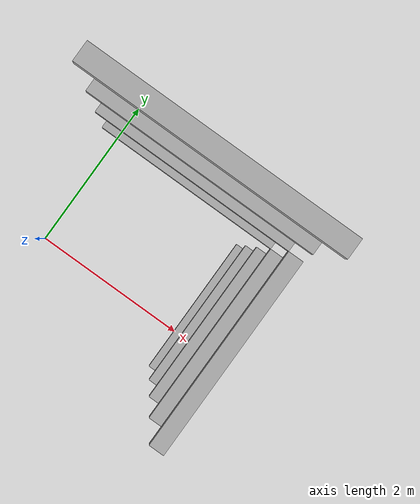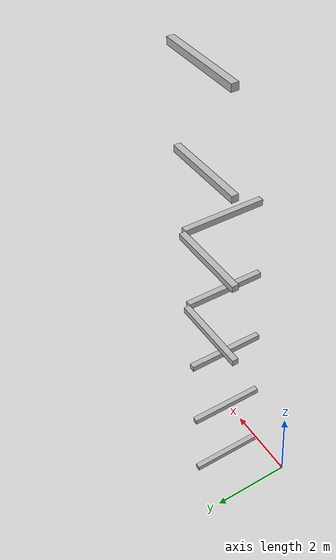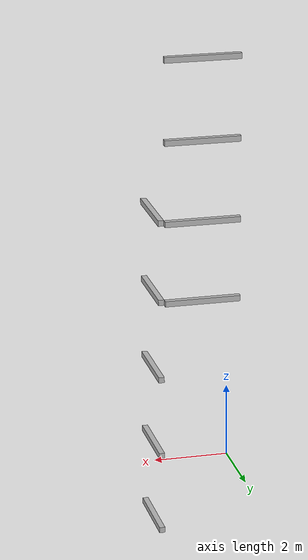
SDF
<sdf version="1.7">
 <world name="default">
  <model name="orthogonal_747_2.000.15_TS">
   <static>1</static>
   <link name="y_link_0_2_4">
    <inertial>
     <mass>1</mass>
     <inertia>
      <ixx>0.166667</ixx>
      <ixy>0</ixy>
      <ixz>0</ixz>
      <iyy>0.166667</iyy>
      <iyz>0</iyz>
      <izz>0.166667</izz>
     </inertia>
    </inertial>
    <pose>8.6 5.375 1.075 0 -0 0</pose>
    <visual name="visual_0">
     <laser_retro>414</laser_retro>
     <geometry><box><size>0.15 1e-06 0.15</size></box></geometry>
     <material>
      <script><name>Gazebo/Grey</name><uri>file://media/materials/scripts/gazebo.material</uri></script>
      <shader type="pixel"><normal_map>__default__</normal_map></shader>
      <ambient>0.678 0.498 0.659 1</ambient>
      <diffuse>0.7 0.7 0.7 1</diffuse>
      <specular>0.01 0.01 0.01 1</specular>
      <emissive>0 0 0 1</emissive>
     </material>
     <pose>0 -1 0 0 -0 0</pose>
     <transparency>1</transparency>
    </visual>
    <visual name="visual_1">
     <laser_retro>415</laser_retro>
     <geometry><box><size>0.15 1e-06 0.15</size></box></geometry>
     <material>
      <script><name>Gazebo/Grey</name><uri>file://media/materials/scripts/gazebo.material</uri></script>
      <shader type="pixel"><normal_map>__default__</normal_map></shader>
      <ambient>0.447 0.624 0.812 1</ambient>
      <diffuse>0.7 0.7 0.7 1</diffuse>
      <specular>0.01 0.01 0.01 1</specular>
      <emissive>0 0 0 1</emissive>
     </material>
     <pose>0 1 0 0 -0 0</pose>
     <transparency>1</transparency>
    </visual>
    <visual name="visual_2">
     <laser_retro>416</laser_retro>
     <geometry><box><size>0.15 2 1e-06</size></box></geometry>
     <material>
      <script><name>Gazebo/Grey</name><uri>file://media/materials/scripts/gazebo.material</uri></script>
      <shader type="pixel"><normal_map>__default__</normal_map></shader>
      <ambient>0.988 0.686 0.243 1</ambient>
      <diffuse>0.7 0.7 0.7 1</diffuse>
      <specular>0.01 0.01 0.01 1</specular>
      <emissive>0 0 0 1</emissive>
     </material>
     <pose>0 0 -0.075 0 -0 0</pose>
     <transparency>1</transparency>
    </visual>
    <visual name="visual_3">
     <laser_retro>417</laser_retro>
     <geometry><box><size>1e-06 2 0.15</size></box></geometry>
     <material>
      <script><name>Gazebo/Grey</name><uri>file://media/materials/scripts/gazebo.material</uri></script>
      <shader type="pixel"><normal_map>__default__</normal_map></shader>
      <ambient>0.988 0.914 0.31 1</ambient>
      <diffuse>0.7 0.7 0.7 1</diffuse>
      <specular>0.01 0.01 0.01 1</specular>
      <emissive>0 0 0 1</emissive>
     </material>
     <pose>0.075 0 0 0 -0 0</pose>
     <transparency>1</transparency>
    </visual>
    <visual name="visual_4">
     <laser_retro>418</laser_retro>
     <geometry><box><size>0.15 2 1e-06</size></box></geometry>
     <material>
      <script><name>Gazebo/Grey</name><uri>file://media/materials/scripts/gazebo.material</uri></script>
      <shader type="pixel"><normal_map>__default__</normal_map></shader>
      <ambient>0.937 0.161 0.161 1</ambient>
      <diffuse>0.7 0.7 0.7 1</diffuse>
      <specular>0.01 0.01 0.01 1</specular>
      <emissive>0 0 0 1</emissive>
     </material>
     <pose>0 0 0.075 0 -0 0</pose>
     <transparency>1</transparency>
    </visual>
    <visual name="visual_5">
     <laser_retro>419</laser_retro>
     <geometry><box><size>1e-06 2 0.15</size></box></geometry>
     <material>
      <script><name>Gazebo/Grey</name><uri>file://media/materials/scripts/gazebo.material</uri></script>
      <shader type="pixel"><normal_map>__default__</normal_map></shader>
      <ambient>0.541 0.886 0.204 1</ambient>
      <diffuse>0.7 0.7 0.7 1</diffuse>
      <specular>0.01 0.01 0.01 1</specular>
      <emissive>0 0 0 1</emissive>
     </material>
     <pose>-0.075 0 0 0 -0 0</pose>
     <transparency>1</transparency>
    </visual>
    <visual name="visual_texture">
     <geometry><box><size>0.149985 1.9998 0.149985</size></box></geometry>
     <material>
      <script>
       <uri>model://BASE_MODELS/simple_block_v2_textured/materials/scripts</uri>
       <uri>model://BASE_MODELS/simple_block_v2_textured/materials/textures</uri>
       <name>metal</name>
      </script>
     </material>
     <laser_retro>420</laser_retro>
    </visual>
    <collision name="collision">
     <geometry><box><size>0.15 2 0.15</size></box></geometry>
     <surface>
      <friction>
       <ode><mu>1</mu><mu2>1</mu2><fdir1>0 0 0</fdir1><slip1>0</slip1><slip2>0</slip2></ode>
       <torsional>
        <coefficient>1</coefficient>
        <patch_radius>0</patch_radius>
        <surface_radius>0</surface_radius>
        <use_patch_radius>1</use_patch_radius>
        <ode><slip>0</slip></ode>
       </torsional>
      </friction>
      <bounce><restitution_coefficient>0</restitution_coefficient><threshold>1e+06</threshold></bounce>
      <contact>
       <collide_without_contact>0</collide_without_contact>
       <collide_without_contact_bitmask>1</collide_without_contact_bitmask>
       <collide_bitmask>1</collide_bitmask>
       <ode>
        <soft_cfm>0</soft_cfm>
        <soft_erp>0.2</soft_erp>
        <kp>1e+13</kp>
        <kd>1</kd>
        <max_vel>0.01</max_vel>
        <min_depth>0</min_depth>
       </ode>
       <bullet>
        <split_impulse>1</split_impulse>
        <split_impulse_penetration_threshold>-0.01</split_impulse_penetration_threshold>
        <soft_cfm>0</soft_cfm>
        <soft_erp>0.2</soft_erp>
        <kp>1e+13</kp>
        <kd>1</kd>
       </bullet>
      </contact>
     </surface>
    </collision>
   </link>
   <link name="y_link_1_2_4">
    <inertial>
     <mass>1</mass>
     <inertia>
      <ixx>0.166667</ixx>
      <ixy>0</ixy>
      <ixz>0</ixz>
      <iyy>0.166667</iyy>
      <iyz>0</iyz>
      <izz>0.166667</izz>
     </inertia>
    </inertial>
    <pose>8.6 5.375 3.225 0 -0 0</pose>
    <visual name="visual_0">
     <laser_retro>1240</laser_retro>
     <geometry><box><size>0.15 1e-06 0.15</size></box></geometry>
     <material>
      <script><name>Gazebo/Grey</name><uri>file://media/materials/scripts/gazebo.material</uri></script>
      <shader type="pixel"><normal_map>__default__</normal_map></shader>
      <ambient>0.678 0.498 0.659 1</ambient>
      <diffuse>0.7 0.7 0.7 1</diffuse>
      <specular>0.01 0.01 0.01 1</specular>
      <emissive>0 0 0 1</emissive>
     </material>
     <pose>0 -1 0 0 -0 0</pose>
     <transparency>1</transparency>
    </visual>
    <visual name="visual_1">
     <laser_retro>1241</laser_retro>
     <geometry><box><size>0.15 1e-06 0.15</size></box></geometry>
     <material>
      <script><name>Gazebo/Grey</name><uri>file://media/materials/scripts/gazebo.material</uri></script>
      <shader type="pixel"><normal_map>__default__</normal_map></shader>
      <ambient>0.447 0.624 0.812 1</ambient>
      <diffuse>0.7 0.7 0.7 1</diffuse>
      <specular>0.01 0.01 0.01 1</specular>
      <emissive>0 0 0 1</emissive>
     </material>
     <pose>0 1 0 0 -0 0</pose>
     <transparency>1</transparency>
    </visual>
    <visual name="visual_2">
     <laser_retro>1242</laser_retro>
     <geometry><box><size>0.15 2 1e-06</size></box></geometry>
     <material>
      <script><name>Gazebo/Grey</name><uri>file://media/materials/scripts/gazebo.material</uri></script>
      <shader type="pixel"><normal_map>__default__</normal_map></shader>
      <ambient>0.988 0.686 0.243 1</ambient>
      <diffuse>0.7 0.7 0.7 1</diffuse>
      <specular>0.01 0.01 0.01 1</specular>
      <emissive>0 0 0 1</emissive>
     </material>
     <pose>0 0 -0.075 0 -0 0</pose>
     <transparency>1</transparency>
    </visual>
    <visual name="visual_3">
     <laser_retro>1243</laser_retro>
     <geometry><box><size>1e-06 2 0.15</size></box></geometry>
     <material>
      <script><name>Gazebo/Grey</name><uri>file://media/materials/scripts/gazebo.material</uri></script>
      <shader type="pixel"><normal_map>__default__</normal_map></shader>
      <ambient>0.988 0.914 0.31 1</ambient>
      <diffuse>0.7 0.7 0.7 1</diffuse>
      <specular>0.01 0.01 0.01 1</specular>
      <emissive>0 0 0 1</emissive>
     </material>
     <pose>0.075 0 0 0 -0 0</pose>
     <transparency>1</transparency>
    </visual>
    <visual name="visual_4">
     <laser_retro>1244</laser_retro>
     <geometry><box><size>0.15 2 1e-06</size></box></geometry>
     <material>
      <script><name>Gazebo/Grey</name><uri>file://media/materials/scripts/gazebo.material</uri></script>
      <shader type="pixel"><normal_map>__default__</normal_map></shader>
      <ambient>0.937 0.161 0.161 1</ambient>
      <diffuse>0.7 0.7 0.7 1</diffuse>
      <specular>0.01 0.01 0.01 1</specular>
      <emissive>0 0 0 1</emissive>
     </material>
     <pose>0 0 0.075 0 -0 0</pose>
     <transparency>1</transparency>
    </visual>
    <visual name="visual_5">
     <laser_retro>1245</laser_retro>
     <geometry><box><size>1e-06 2 0.15</size></box></geometry>
     <material>
      <script><name>Gazebo/Grey</name><uri>file://media/materials/scripts/gazebo.material</uri></script>
      <shader type="pixel"><normal_map>__default__</normal_map></shader>
      <ambient>0.541 0.886 0.204 1</ambient>
      <diffuse>0.7 0.7 0.7 1</diffuse>
      <specular>0.01 0.01 0.01 1</specular>
      <emissive>0 0 0 1</emissive>
     </material>
     <pose>-0.075 0 0 0 -0 0</pose>
     <transparency>1</transparency>
    </visual>
    <visual name="visual_texture">
     <geometry><box><size>0.149985 1.9998 0.149985</size></box></geometry>
     <material>
      <script>
       <uri>model://BASE_MODELS/simple_block_v2_textured/materials/scripts</uri>
       <uri>model://BASE_MODELS/simple_block_v2_textured/materials/textures</uri>
       <name>metal</name>
      </script>
     </material>
     <laser_retro>1246</laser_retro>
    </visual>
    <collision name="collision">
     <geometry><box><size>0.15 2 0.15</size></box></geometry>
     <surface>
      <friction>
       <ode><mu>1</mu><mu2>1</mu2><fdir1>0 0 0</fdir1><slip1>0</slip1><slip2>0</slip2></ode>
       <torsional>
        <coefficient>1</coefficient>
        <patch_radius>0</patch_radius>
        <surface_radius>0</surface_radius>
        <use_patch_radius>1</use_patch_radius>
        <ode><slip>0</slip></ode>
       </torsional>
      </friction>
      <bounce><restitution_coefficient>0</restitution_coefficient><threshold>1e+06</threshold></bounce>
      <contact>
       <collide_without_contact>0</collide_without_contact>
       <collide_without_contact_bitmask>1</collide_without_contact_bitmask>
       <collide_bitmask>1</collide_bitmask>
       <ode>
        <soft_cfm>0</soft_cfm>
        <soft_erp>0.2</soft_erp>
        <kp>1e+13</kp>
        <kd>1</kd>
        <max_vel>0.01</max_vel>
        <min_depth>0</min_depth>
       </ode>
       <bullet>
        <split_impulse>1</split_impulse>
        <split_impulse_penetration_threshold>-0.01</split_impulse_penetration_threshold>
        <soft_cfm>0</soft_cfm>
        <soft_erp>0.2</soft_erp>
        <kp>1e+13</kp>
        <kd>1</kd>
       </bullet>
      </contact>
     </surface>
    </collision>
   </link>
   <link name="y_link_2_2_4">
    <inertial>
     <mass>1</mass>
     <inertia>
      <ixx>0.166667</ixx>
      <ixy>0</ixy>
      <ixz>0</ixz>
      <iyy>0.166667</iyy>
      <iyz>0</iyz>
      <izz>0.166667</izz>
     </inertia>
    </inertial>
    <pose>8.6 5.375 5.375 0 -0 0</pose>
    <visual name="visual_0">
     <laser_retro>2143</laser_retro>
     <geometry><box><size>0.15 1e-06 0.15</size></box></geometry>
     <material>
      <script><name>Gazebo/Grey</name><uri>file://media/materials/scripts/gazebo.material</uri></script>
      <shader type="pixel"><normal_map>__default__</normal_map></shader>
      <ambient>0.678 0.498 0.659 1</ambient>
      <diffuse>0.7 0.7 0.7 1</diffuse>
      <specular>0.01 0.01 0.01 1</specular>
      <emissive>0 0 0 1</emissive>
     </material>
     <pose>0 -1 0 0 -0 0</pose>
     <transparency>1</transparency>
    </visual>
    <visual name="visual_1">
     <laser_retro>2144</laser_retro>
     <geometry><box><size>0.15 1e-06 0.15</size></box></geometry>
     <material>
      <script><name>Gazebo/Grey</name><uri>file://media/materials/scripts/gazebo.material</uri></script>
      <shader type="pixel"><normal_map>__default__</normal_map></shader>
      <ambient>0.447 0.624 0.812 1</ambient>
      <diffuse>0.7 0.7 0.7 1</diffuse>
      <specular>0.01 0.01 0.01 1</specular>
      <emissive>0 0 0 1</emissive>
     </material>
     <pose>0 1 0 0 -0 0</pose>
     <transparency>1</transparency>
    </visual>
    <visual name="visual_2">
     <laser_retro>2145</laser_retro>
     <geometry><box><size>0.15 2 1e-06</size></box></geometry>
     <material>
      <script><name>Gazebo/Grey</name><uri>file://media/materials/scripts/gazebo.material</uri></script>
      <shader type="pixel"><normal_map>__default__</normal_map></shader>
      <ambient>0.988 0.686 0.243 1</ambient>
      <diffuse>0.7 0.7 0.7 1</diffuse>
      <specular>0.01 0.01 0.01 1</specular>
      <emissive>0 0 0 1</emissive>
     </material>
     <pose>0 0 -0.075 0 -0 0</pose>
     <transparency>1</transparency>
    </visual>
    <visual name="visual_3">
     <laser_retro>2146</laser_retro>
     <geometry><box><size>1e-06 2 0.15</size></box></geometry>
     <material>
      <script><name>Gazebo/Grey</name><uri>file://media/materials/scripts/gazebo.material</uri></script>
      <shader type="pixel"><normal_map>__default__</normal_map></shader>
      <ambient>0.988 0.914 0.31 1</ambient>
      <diffuse>0.7 0.7 0.7 1</diffuse>
      <specular>0.01 0.01 0.01 1</specular>
      <emissive>0 0 0 1</emissive>
     </material>
     <pose>0.075 0 0 0 -0 0</pose>
     <transparency>1</transparency>
    </visual>
    <visual name="visual_4">
     <laser_retro>2147</laser_retro>
     <geometry><box><size>0.15 2 1e-06</size></box></geometry>
     <material>
      <script><name>Gazebo/Grey</name><uri>file://media/materials/scripts/gazebo.material</uri></script>
      <shader type="pixel"><normal_map>__default__</normal_map></shader>
      <ambient>0.937 0.161 0.161 1</ambient>
      <diffuse>0.7 0.7 0.7 1</diffuse>
      <specular>0.01 0.01 0.01 1</specular>
      <emissive>0 0 0 1</emissive>
     </material>
     <pose>0 0 0.075 0 -0 0</pose>
     <transparency>1</transparency>
    </visual>
    <visual name="visual_5">
     <laser_retro>2148</laser_retro>
     <geometry><box><size>1e-06 2 0.15</size></box></geometry>
     <material>
      <script><name>Gazebo/Grey</name><uri>file://media/materials/scripts/gazebo.material</uri></script>
      <shader type="pixel"><normal_map>__default__</normal_map></shader>
      <ambient>0.541 0.886 0.204 1</ambient>
      <diffuse>0.7 0.7 0.7 1</diffuse>
      <specular>0.01 0.01 0.01 1</specular>
      <emissive>0 0 0 1</emissive>
     </material>
     <pose>-0.075 0 0 0 -0 0</pose>
     <transparency>1</transparency>
    </visual>
    <visual name="visual_texture">
     <geometry><box><size>0.149985 1.9998 0.149985</size></box></geometry>
     <material>
      <script>
       <uri>model://BASE_MODELS/simple_block_v2_textured/materials/scripts</uri>
       <uri>model://BASE_MODELS/simple_block_v2_textured/materials/textures</uri>
       <name>metal</name>
      </script>
     </material>
     <laser_retro>2149</laser_retro>
    </visual>
    <collision name="collision">
     <geometry><box><size>0.15 2 0.15</size></box></geometry>
     <surface>
      <friction>
       <ode><mu>1</mu><mu2>1</mu2><fdir1>0 0 0</fdir1><slip1>0</slip1><slip2>0</slip2></ode>
       <torsional>
        <coefficient>1</coefficient>
        <patch_radius>0</patch_radius>
        <surface_radius>0</surface_radius>
        <use_patch_radius>1</use_patch_radius>
        <ode><slip>0</slip></ode>
       </torsional>
      </friction>
      <bounce><restitution_coefficient>0</restitution_coefficient><threshold>1e+06</threshold></bounce>
      <contact>
       <collide_without_contact>0</collide_without_contact>
       <collide_without_contact_bitmask>1</collide_without_contact_bitmask>
       <collide_bitmask>1</collide_bitmask>
       <ode>
        <soft_cfm>0</soft_cfm>
        <soft_erp>0.2</soft_erp>
        <kp>1e+13</kp>
        <kd>1</kd>
        <max_vel>0.01</max_vel>
        <min_depth>0</min_depth>
       </ode>
       <bullet>
        <split_impulse>1</split_impulse>
        <split_impulse_penetration_threshold>-0.01</split_impulse_penetration_threshold>
        <soft_cfm>0</soft_cfm>
        <soft_erp>0.2</soft_erp>
        <kp>1e+13</kp>
        <kd>1</kd>
       </bullet>
      </contact>
     </surface>
    </collision>
   </link>
   <link name="y_link_3_2_4">
    <inertial>
     <mass>1</mass>
     <inertia>
      <ixx>0.166667</ixx>
      <ixy>0</ixy>
      <ixz>0</ixz>
      <iyy>0.166667</iyy>
      <iyz>0</iyz>
      <izz>0.166667</izz>
     </inertia>
    </inertial>
    <pose>8.6 5.375 7.525 0 -0 0</pose>
    <visual name="visual_0">
     <laser_retro>3046</laser_retro>
     <geometry><box><size>0.15 1e-06 0.15</size></box></geometry>
     <material>
      <script><name>Gazebo/Grey</name><uri>file://media/materials/scripts/gazebo.material</uri></script>
      <shader type="pixel"><normal_map>__default__</normal_map></shader>
      <ambient>0.678 0.498 0.659 1</ambient>
      <diffuse>0.7 0.7 0.7 1</diffuse>
      <specular>0.01 0.01 0.01 1</specular>
      <emissive>0 0 0 1</emissive>
     </material>
     <pose>0 -1 0 0 -0 0</pose>
     <transparency>1</transparency>
    </visual>
    <visual name="visual_1">
     <laser_retro>3047</laser_retro>
     <geometry><box><size>0.15 1e-06 0.15</size></box></geometry>
     <material>
      <script><name>Gazebo/Grey</name><uri>file://media/materials/scripts/gazebo.material</uri></script>
      <shader type="pixel"><normal_map>__default__</normal_map></shader>
      <ambient>0.447 0.624 0.812 1</ambient>
      <diffuse>0.7 0.7 0.7 1</diffuse>
      <specular>0.01 0.01 0.01 1</specular>
      <emissive>0 0 0 1</emissive>
     </material>
     <pose>0 1 0 0 -0 0</pose>
     <transparency>1</transparency>
    </visual>
    <visual name="visual_2">
     <laser_retro>3048</laser_retro>
     <geometry><box><size>0.15 2 1e-06</size></box></geometry>
     <material>
      <script><name>Gazebo/Grey</name><uri>file://media/materials/scripts/gazebo.material</uri></script>
      <shader type="pixel"><normal_map>__default__</normal_map></shader>
      <ambient>0.988 0.686 0.243 1</ambient>
      <diffuse>0.7 0.7 0.7 1</diffuse>
      <specular>0.01 0.01 0.01 1</specular>
      <emissive>0 0 0 1</emissive>
     </material>
     <pose>0 0 -0.075 0 -0 0</pose>
     <transparency>1</transparency>
    </visual>
    <visual name="visual_3">
     <laser_retro>3049</laser_retro>
     <geometry><box><size>1e-06 2 0.15</size></box></geometry>
     <material>
      <script><name>Gazebo/Grey</name><uri>file://media/materials/scripts/gazebo.material</uri></script>
      <shader type="pixel"><normal_map>__default__</normal_map></shader>
      <ambient>0.988 0.914 0.31 1</ambient>
      <diffuse>0.7 0.7 0.7 1</diffuse>
      <specular>0.01 0.01 0.01 1</specular>
      <emissive>0 0 0 1</emissive>
     </material>
     <pose>0.075 0 0 0 -0 0</pose>
     <transparency>1</transparency>
    </visual>
    <visual name="visual_4">
     <laser_retro>3050</laser_retro>
     <geometry><box><size>0.15 2 1e-06</size></box></geometry>
     <material>
      <script><name>Gazebo/Grey</name><uri>file://media/materials/scripts/gazebo.material</uri></script>
      <shader type="pixel"><normal_map>__default__</normal_map></shader>
      <ambient>0.937 0.161 0.161 1</ambient>
      <diffuse>0.7 0.7 0.7 1</diffuse>
      <specular>0.01 0.01 0.01 1</specular>
      <emissive>0 0 0 1</emissive>
     </material>
     <pose>0 0 0.075 0 -0 0</pose>
     <transparency>1</transparency>
    </visual>
    <visual name="visual_5">
     <laser_retro>3051</laser_retro>
     <geometry><box><size>1e-06 2 0.15</size></box></geometry>
     <material>
      <script><name>Gazebo/Grey</name><uri>file://media/materials/scripts/gazebo.material</uri></script>
      <shader type="pixel"><normal_map>__default__</normal_map></shader>
      <ambient>0.541 0.886 0.204 1</ambient>
      <diffuse>0.7 0.7 0.7 1</diffuse>
      <specular>0.01 0.01 0.01 1</specular>
      <emissive>0 0 0 1</emissive>
     </material>
     <pose>-0.075 0 0 0 -0 0</pose>
     <transparency>1</transparency>
    </visual>
    <visual name="visual_texture">
     <geometry><box><size>0.149985 1.9998 0.149985</size></box></geometry>
     <material>
      <script>
       <uri>model://BASE_MODELS/simple_block_v2_textured/materials/scripts</uri>
       <uri>model://BASE_MODELS/simple_block_v2_textured/materials/textures</uri>
       <name>metal</name>
      </script>
     </material>
     <laser_retro>3052</laser_retro>
    </visual>
    <collision name="collision">
     <geometry><box><size>0.15 2 0.15</size></box></geometry>
     <surface>
      <friction>
       <ode><mu>1</mu><mu2>1</mu2><fdir1>0 0 0</fdir1><slip1>0</slip1><slip2>0</slip2></ode>
       <torsional>
        <coefficient>1</coefficient>
        <patch_radius>0</patch_radius>
        <surface_radius>0</surface_radius>
        <use_patch_radius>1</use_patch_radius>
        <ode><slip>0</slip></ode>
       </torsional>
      </friction>
      <bounce><restitution_coefficient>0</restitution_coefficient><threshold>1e+06</threshold></bounce>
      <contact>
       <collide_without_contact>0</collide_without_contact>
       <collide_without_contact_bitmask>1</collide_without_contact_bitmask>
       <collide_bitmask>1</collide_bitmask>
       <ode>
        <soft_cfm>0</soft_cfm>
        <soft_erp>0.2</soft_erp>
        <kp>1e+13</kp>
        <kd>1</kd>
        <max_vel>0.01</max_vel>
        <min_depth>0</min_depth>
       </ode>
       <bullet>
        <split_impulse>1</split_impulse>
        <split_impulse_penetration_threshold>-0.01</split_impulse_penetration_threshold>
        <soft_cfm>0</soft_cfm>
        <soft_erp>0.2</soft_erp>
        <kp>1e+13</kp>
        <kd>1</kd>
       </bullet>
      </contact>
     </surface>
    </collision>
   </link>
   <link name="x_link_3_3_3">
    <inertial>
     <mass>1</mass>
     <inertia>
      <ixx>0.166667</ixx>
      <ixy>0</ixy>
      <ixz>0</ixz>
      <iyy>0.166667</iyy>
      <iyz>0</iyz>
      <izz>0.166667</izz>
     </inertia>
    </inertial>
    <pose>7.525 6.45 7.525 0 -0 0</pose>
    <visual name="visual_0">
     <laser_retro>3193</laser_retro>
     <geometry><box><size>2 1e-06 0.15</size></box></geometry>
     <material>
      <script><name>Gazebo/Grey</name><uri>file://media/materials/scripts/gazebo.material</uri></script>
      <shader type="pixel"><normal_map>__default__</normal_map></shader>
      <ambient>0.678 0.498 0.659 1</ambient>
      <diffuse>0.7 0.7 0.7 1</diffuse>
      <specular>0.01 0.01 0.01 1</specular>
      <emissive>0 0 0 1</emissive>
     </material>
     <pose>0 -0.075 0 0 -0 0</pose>
     <transparency>1</transparency>
    </visual>
    <visual name="visual_1">
     <laser_retro>3194</laser_retro>
     <geometry><box><size>2 1e-06 0.15</size></box></geometry>
     <material>
      <script><name>Gazebo/Grey</name><uri>file://media/materials/scripts/gazebo.material</uri></script>
      <shader type="pixel"><normal_map>__default__</normal_map></shader>
      <ambient>0.447 0.624 0.812 1</ambient>
      <diffuse>0.7 0.7 0.7 1</diffuse>
      <specular>0.01 0.01 0.01 1</specular>
      <emissive>0 0 0 1</emissive>
     </material>
     <pose>0 0.075 0 0 -0 0</pose>
     <transparency>1</transparency>
    </visual>
    <visual name="visual_2">
     <laser_retro>3195</laser_retro>
     <geometry><box><size>2 0.15 1e-06</size></box></geometry>
     <material>
      <script><name>Gazebo/Grey</name><uri>file://media/materials/scripts/gazebo.material</uri></script>
      <shader type="pixel"><normal_map>__default__</normal_map></shader>
      <ambient>0.988 0.686 0.243 1</ambient>
      <diffuse>0.7 0.7 0.7 1</diffuse>
      <specular>0.01 0.01 0.01 1</specular>
      <emissive>0 0 0 1</emissive>
     </material>
     <pose>0 0 -0.075 0 -0 0</pose>
     <transparency>1</transparency>
    </visual>
    <visual name="visual_3">
     <laser_retro>3196</laser_retro>
     <geometry><box><size>1e-06 0.15 0.15</size></box></geometry>
     <material>
      <script><name>Gazebo/Grey</name><uri>file://media/materials/scripts/gazebo.material</uri></script>
      <shader type="pixel"><normal_map>__default__</normal_map></shader>
      <ambient>0.988 0.914 0.31 1</ambient>
      <diffuse>0.7 0.7 0.7 1</diffuse>
      <specular>0.01 0.01 0.01 1</specular>
      <emissive>0 0 0 1</emissive>
     </material>
     <pose>1 0 0 0 -0 0</pose>
     <transparency>1</transparency>
    </visual>
    <visual name="visual_4">
     <laser_retro>3197</laser_retro>
     <geometry><box><size>2 0.15 1e-06</size></box></geometry>
     <material>
      <script><name>Gazebo/Grey</name><uri>file://media/materials/scripts/gazebo.material</uri></script>
      <shader type="pixel"><normal_map>__default__</normal_map></shader>
      <ambient>0.937 0.161 0.161 1</ambient>
      <diffuse>0.7 0.7 0.7 1</diffuse>
      <specular>0.01 0.01 0.01 1</specular>
      <emissive>0 0 0 1</emissive>
     </material>
     <pose>0 0 0.075 0 -0 0</pose>
     <transparency>1</transparency>
    </visual>
    <visual name="visual_5">
     <laser_retro>3198</laser_retro>
     <geometry><box><size>1e-06 0.15 0.15</size></box></geometry>
     <material>
      <script><name>Gazebo/Grey</name><uri>file://media/materials/scripts/gazebo.material</uri></script>
      <shader type="pixel"><normal_map>__default__</normal_map></shader>
      <ambient>0.541 0.886 0.204 1</ambient>
      <diffuse>0.7 0.7 0.7 1</diffuse>
      <specular>0.01 0.01 0.01 1</specular>
      <emissive>0 0 0 1</emissive>
     </material>
     <pose>-1 0 0 0 -0 0</pose>
     <transparency>1</transparency>
    </visual>
    <visual name="visual_texture">
     <geometry><box><size>1.9998 0.149985 0.149985</size></box></geometry>
     <material>
      <script>
       <uri>model://BASE_MODELS/simple_block_v2_textured/materials/scripts</uri>
       <uri>model://BASE_MODELS/simple_block_v2_textured/materials/textures</uri>
       <name>metal</name>
      </script>
     </material>
     <laser_retro>3199</laser_retro>
    </visual>
    <collision name="collision">
     <geometry><box><size>2 0.15 0.15</size></box></geometry>
     <surface>
      <friction>
       <ode><mu>1</mu><mu2>1</mu2><fdir1>0 0 0</fdir1><slip1>0</slip1><slip2>0</slip2></ode>
       <torsional>
        <coefficient>1</coefficient>
        <patch_radius>0</patch_radius>
        <surface_radius>0</surface_radius>
        <use_patch_radius>1</use_patch_radius>
        <ode><slip>0</slip></ode>
       </torsional>
      </friction>
      <bounce><restitution_coefficient>0</restitution_coefficient><threshold>1e+06</threshold></bounce>
      <contact>
       <collide_without_contact>0</collide_without_contact>
       <collide_without_contact_bitmask>1</collide_without_contact_bitmask>
       <collide_bitmask>1</collide_bitmask>
       <ode>
        <soft_cfm>0</soft_cfm>
        <soft_erp>0.2</soft_erp>
        <kp>1e+13</kp>
        <kd>1</kd>
        <max_vel>0.01</max_vel>
        <min_depth>0</min_depth>
       </ode>
       <bullet>
        <split_impulse>1</split_impulse>
        <split_impulse_penetration_threshold>-0.01</split_impulse_penetration_threshold>
        <soft_cfm>0</soft_cfm>
        <soft_erp>0.2</soft_erp>
        <kp>1e+13</kp>
        <kd>1</kd>
       </bullet>
      </contact>
     </surface>
    </collision>
   </link>
   <link name="y_link_4_2_4">
    <inertial>
     <mass>1</mass>
     <inertia>
      <ixx>0.166667</ixx>
      <ixy>0</ixy>
      <ixz>0</ixz>
      <iyy>0.166667</iyy>
      <iyz>0</iyz>
      <izz>0.166667</izz>
     </inertia>
    </inertial>
    <pose>8.6 5.375 9.675 0 -0 0</pose>
    <visual name="visual_0">
     <laser_retro>3949</laser_retro>
     <geometry><box><size>0.15 1e-06 0.15</size></box></geometry>
     <material>
      <script><name>Gazebo/Grey</name><uri>file://media/materials/scripts/gazebo.material</uri></script>
      <shader type="pixel"><normal_map>__default__</normal_map></shader>
      <ambient>0.678 0.498 0.659 1</ambient>
      <diffuse>0.7 0.7 0.7 1</diffuse>
      <specular>0.01 0.01 0.01 1</specular>
      <emissive>0 0 0 1</emissive>
     </material>
     <pose>0 -1 0 0 -0 0</pose>
     <transparency>1</transparency>
    </visual>
    <visual name="visual_1">
     <laser_retro>3950</laser_retro>
     <geometry><box><size>0.15 1e-06 0.15</size></box></geometry>
     <material>
      <script><name>Gazebo/Grey</name><uri>file://media/materials/scripts/gazebo.material</uri></script>
      <shader type="pixel"><normal_map>__default__</normal_map></shader>
      <ambient>0.447 0.624 0.812 1</ambient>
      <diffuse>0.7 0.7 0.7 1</diffuse>
      <specular>0.01 0.01 0.01 1</specular>
      <emissive>0 0 0 1</emissive>
     </material>
     <pose>0 1 0 0 -0 0</pose>
     <transparency>1</transparency>
    </visual>
    <visual name="visual_2">
     <laser_retro>3951</laser_retro>
     <geometry><box><size>0.15 2 1e-06</size></box></geometry>
     <material>
      <script><name>Gazebo/Grey</name><uri>file://media/materials/scripts/gazebo.material</uri></script>
      <shader type="pixel"><normal_map>__default__</normal_map></shader>
      <ambient>0.988 0.686 0.243 1</ambient>
      <diffuse>0.7 0.7 0.7 1</diffuse>
      <specular>0.01 0.01 0.01 1</specular>
      <emissive>0 0 0 1</emissive>
     </material>
     <pose>0 0 -0.075 0 -0 0</pose>
     <transparency>1</transparency>
    </visual>
    <visual name="visual_3">
     <laser_retro>3952</laser_retro>
     <geometry><box><size>1e-06 2 0.15</size></box></geometry>
     <material>
      <script><name>Gazebo/Grey</name><uri>file://media/materials/scripts/gazebo.material</uri></script>
      <shader type="pixel"><normal_map>__default__</normal_map></shader>
      <ambient>0.988 0.914 0.31 1</ambient>
      <diffuse>0.7 0.7 0.7 1</diffuse>
      <specular>0.01 0.01 0.01 1</specular>
      <emissive>0 0 0 1</emissive>
     </material>
     <pose>0.075 0 0 0 -0 0</pose>
     <transparency>1</transparency>
    </visual>
    <visual name="visual_4">
     <laser_retro>3953</laser_retro>
     <geometry><box><size>0.15 2 1e-06</size></box></geometry>
     <material>
      <script><name>Gazebo/Grey</name><uri>file://media/materials/scripts/gazebo.material</uri></script>
      <shader type="pixel"><normal_map>__default__</normal_map></shader>
      <ambient>0.937 0.161 0.161 1</ambient>
      <diffuse>0.7 0.7 0.7 1</diffuse>
      <specular>0.01 0.01 0.01 1</specular>
      <emissive>0 0 0 1</emissive>
     </material>
     <pose>0 0 0.075 0 -0 0</pose>
     <transparency>1</transparency>
    </visual>
    <visual name="visual_5">
     <laser_retro>3954</laser_retro>
     <geometry><box><size>1e-06 2 0.15</size></box></geometry>
     <material>
      <script><name>Gazebo/Grey</name><uri>file://media/materials/scripts/gazebo.material</uri></script>
      <shader type="pixel"><normal_map>__default__</normal_map></shader>
      <ambient>0.541 0.886 0.204 1</ambient>
      <diffuse>0.7 0.7 0.7 1</diffuse>
      <specular>0.01 0.01 0.01 1</specular>
      <emissive>0 0 0 1</emissive>
     </material>
     <pose>-0.075 0 0 0 -0 0</pose>
     <transparency>1</transparency>
    </visual>
    <visual name="visual_texture">
     <geometry><box><size>0.149985 1.9998 0.149985</size></box></geometry>
     <material>
      <script>
       <uri>model://BASE_MODELS/simple_block_v2_textured/materials/scripts</uri>
       <uri>model://BASE_MODELS/simple_block_v2_textured/materials/textures</uri>
       <name>metal</name>
      </script>
     </material>
     <laser_retro>3955</laser_retro>
    </visual>
    <collision name="collision">
     <geometry><box><size>0.15 2 0.15</size></box></geometry>
     <surface>
      <friction>
       <ode><mu>1</mu><mu2>1</mu2><fdir1>0 0 0</fdir1><slip1>0</slip1><slip2>0</slip2></ode>
       <torsional>
        <coefficient>1</coefficient>
        <patch_radius>0</patch_radius>
        <surface_radius>0</surface_radius>
        <use_patch_radius>1</use_patch_radius>
        <ode><slip>0</slip></ode>
       </torsional>
      </friction>
      <bounce><restitution_coefficient>0</restitution_coefficient><threshold>1e+06</threshold></bounce>
      <contact>
       <collide_without_contact>0</collide_without_contact>
       <collide_without_contact_bitmask>1</collide_without_contact_bitmask>
       <collide_bitmask>1</collide_bitmask>
       <ode>
        <soft_cfm>0</soft_cfm>
        <soft_erp>0.2</soft_erp>
        <kp>1e+13</kp>
        <kd>1</kd>
        <max_vel>0.01</max_vel>
        <min_depth>0</min_depth>
       </ode>
       <bullet>
        <split_impulse>1</split_impulse>
        <split_impulse_penetration_threshold>-0.01</split_impulse_penetration_threshold>
        <soft_cfm>0</soft_cfm>
        <soft_erp>0.2</soft_erp>
        <kp>1e+13</kp>
        <kd>1</kd>
       </bullet>
      </contact>
     </surface>
    </collision>
   </link>
   <link name="x_link_4_3_3">
    <inertial>
     <mass>1</mass>
     <inertia>
      <ixx>0.166667</ixx>
      <ixy>0</ixy>
      <ixz>0</ixz>
      <iyy>0.166667</iyy>
      <iyz>0</iyz>
      <izz>0.166667</izz>
     </inertia>
    </inertial>
    <pose>7.525 6.45 9.675 0 -0 0</pose>
    <visual name="visual_0">
     <laser_retro>4096</laser_retro>
     <geometry><box><size>2 1e-06 0.15</size></box></geometry>
     <material>
      <script><name>Gazebo/Grey</name><uri>file://media/materials/scripts/gazebo.material</uri></script>
      <shader type="pixel"><normal_map>__default__</normal_map></shader>
      <ambient>0.678 0.498 0.659 1</ambient>
      <diffuse>0.7 0.7 0.7 1</diffuse>
      <specular>0.01 0.01 0.01 1</specular>
      <emissive>0 0 0 1</emissive>
     </material>
     <pose>0 -0.075 0 0 -0 0</pose>
     <transparency>1</transparency>
    </visual>
    <visual name="visual_1">
     <laser_retro>4097</laser_retro>
     <geometry><box><size>2 1e-06 0.15</size></box></geometry>
     <material>
      <script><name>Gazebo/Grey</name><uri>file://media/materials/scripts/gazebo.material</uri></script>
      <shader type="pixel"><normal_map>__default__</normal_map></shader>
      <ambient>0.447 0.624 0.812 1</ambient>
      <diffuse>0.7 0.7 0.7 1</diffuse>
      <specular>0.01 0.01 0.01 1</specular>
      <emissive>0 0 0 1</emissive>
     </material>
     <pose>0 0.075 0 0 -0 0</pose>
     <transparency>1</transparency>
    </visual>
    <visual name="visual_2">
     <laser_retro>4098</laser_retro>
     <geometry><box><size>2 0.15 1e-06</size></box></geometry>
     <material>
      <script><name>Gazebo/Grey</name><uri>file://media/materials/scripts/gazebo.material</uri></script>
      <shader type="pixel"><normal_map>__default__</normal_map></shader>
      <ambient>0.988 0.686 0.243 1</ambient>
      <diffuse>0.7 0.7 0.7 1</diffuse>
      <specular>0.01 0.01 0.01 1</specular>
      <emissive>0 0 0 1</emissive>
     </material>
     <pose>0 0 -0.075 0 -0 0</pose>
     <transparency>1</transparency>
    </visual>
    <visual name="visual_3">
     <laser_retro>4099</laser_retro>
     <geometry><box><size>1e-06 0.15 0.15</size></box></geometry>
     <material>
      <script><name>Gazebo/Grey</name><uri>file://media/materials/scripts/gazebo.material</uri></script>
      <shader type="pixel"><normal_map>__default__</normal_map></shader>
      <ambient>0.988 0.914 0.31 1</ambient>
      <diffuse>0.7 0.7 0.7 1</diffuse>
      <specular>0.01 0.01 0.01 1</specular>
      <emissive>0 0 0 1</emissive>
     </material>
     <pose>1 0 0 0 -0 0</pose>
     <transparency>1</transparency>
    </visual>
    <visual name="visual_4">
     <laser_retro>4100</laser_retro>
     <geometry><box><size>2 0.15 1e-06</size></box></geometry>
     <material>
      <script><name>Gazebo/Grey</name><uri>file://media/materials/scripts/gazebo.material</uri></script>
      <shader type="pixel"><normal_map>__default__</normal_map></shader>
      <ambient>0.937 0.161 0.161 1</ambient>
      <diffuse>0.7 0.7 0.7 1</diffuse>
      <specular>0.01 0.01 0.01 1</specular>
      <emissive>0 0 0 1</emissive>
     </material>
     <pose>0 0 0.075 0 -0 0</pose>
     <transparency>1</transparency>
    </visual>
    <visual name="visual_5">
     <laser_retro>4101</laser_retro>
     <geometry><box><size>1e-06 0.15 0.15</size></box></geometry>
     <material>
      <script><name>Gazebo/Grey</name><uri>file://media/materials/scripts/gazebo.material</uri></script>
      <shader type="pixel"><normal_map>__default__</normal_map></shader>
      <ambient>0.541 0.886 0.204 1</ambient>
      <diffuse>0.7 0.7 0.7 1</diffuse>
      <specular>0.01 0.01 0.01 1</specular>
      <emissive>0 0 0 1</emissive>
     </material>
     <pose>-1 0 0 0 -0 0</pose>
     <transparency>1</transparency>
    </visual>
    <visual name="visual_texture">
     <geometry><box><size>1.9998 0.149985 0.149985</size></box></geometry>
     <material>
      <script>
       <uri>model://BASE_MODELS/simple_block_v2_textured/materials/scripts</uri>
       <uri>model://BASE_MODELS/simple_block_v2_textured/materials/textures</uri>
       <name>metal</name>
      </script>
     </material>
     <laser_retro>4102</laser_retro>
    </visual>
    <collision name="collision">
     <geometry><box><size>2 0.15 0.15</size></box></geometry>
     <surface>
      <friction>
       <ode><mu>1</mu><mu2>1</mu2><fdir1>0 0 0</fdir1><slip1>0</slip1><slip2>0</slip2></ode>
       <torsional>
        <coefficient>1</coefficient>
        <patch_radius>0</patch_radius>
        <surface_radius>0</surface_radius>
        <use_patch_radius>1</use_patch_radius>
        <ode><slip>0</slip></ode>
       </torsional>
      </friction>
      <bounce><restitution_coefficient>0</restitution_coefficient><threshold>1e+06</threshold></bounce>
      <contact>
       <collide_without_contact>0</collide_without_contact>
       <collide_without_contact_bitmask>1</collide_without_contact_bitmask>
       <collide_bitmask>1</collide_bitmask>
       <ode>
        <soft_cfm>0</soft_cfm>
        <soft_erp>0.2</soft_erp>
        <kp>1e+13</kp>
        <kd>1</kd>
        <max_vel>0.01</max_vel>
        <min_depth>0</min_depth>
       </ode>
       <bullet>
        <split_impulse>1</split_impulse>
        <split_impulse_penetration_threshold>-0.01</split_impulse_penetration_threshold>
        <soft_cfm>0</soft_cfm>
        <soft_erp>0.2</soft_erp>
        <kp>1e+13</kp>
        <kd>1</kd>
       </bullet>
      </contact>
     </surface>
    </collision>
   </link>
   <link name="x_link_5_3_3">
    <inertial>
     <mass>1</mass>
     <inertia>
      <ixx>0.166667</ixx>
      <ixy>0</ixy>
      <ixz>0</ixz>
      <iyy>0.166667</iyy>
      <iyz>0</iyz>
      <izz>0.166667</izz>
     </inertia>
    </inertial>
    <pose>7.525 6.45 11.825 0 -0 0</pose>
    <visual name="visual_0">
     <laser_retro>4999</laser_retro>
     <geometry><box><size>2 1e-06 0.15</size></box></geometry>
     <material>
      <script><name>Gazebo/Grey</name><uri>file://media/materials/scripts/gazebo.material</uri></script>
      <shader type="pixel"><normal_map>__default__</normal_map></shader>
      <ambient>0.678 0.498 0.659 1</ambient>
      <diffuse>0.7 0.7 0.7 1</diffuse>
      <specular>0.01 0.01 0.01 1</specular>
      <emissive>0 0 0 1</emissive>
     </material>
     <pose>0 -0.075 0 0 -0 0</pose>
     <transparency>1</transparency>
    </visual>
    <visual name="visual_1">
     <laser_retro>5000</laser_retro>
     <geometry><box><size>2 1e-06 0.15</size></box></geometry>
     <material>
      <script><name>Gazebo/Grey</name><uri>file://media/materials/scripts/gazebo.material</uri></script>
      <shader type="pixel"><normal_map>__default__</normal_map></shader>
      <ambient>0.447 0.624 0.812 1</ambient>
      <diffuse>0.7 0.7 0.7 1</diffuse>
      <specular>0.01 0.01 0.01 1</specular>
      <emissive>0 0 0 1</emissive>
     </material>
     <pose>0 0.075 0 0 -0 0</pose>
     <transparency>1</transparency>
    </visual>
    <visual name="visual_2">
     <laser_retro>5001</laser_retro>
     <geometry><box><size>2 0.15 1e-06</size></box></geometry>
     <material>
      <script><name>Gazebo/Grey</name><uri>file://media/materials/scripts/gazebo.material</uri></script>
      <shader type="pixel"><normal_map>__default__</normal_map></shader>
      <ambient>0.988 0.686 0.243 1</ambient>
      <diffuse>0.7 0.7 0.7 1</diffuse>
      <specular>0.01 0.01 0.01 1</specular>
      <emissive>0 0 0 1</emissive>
     </material>
     <pose>0 0 -0.075 0 -0 0</pose>
     <transparency>1</transparency>
    </visual>
    <visual name="visual_3">
     <laser_retro>5002</laser_retro>
     <geometry><box><size>1e-06 0.15 0.15</size></box></geometry>
     <material>
      <script><name>Gazebo/Grey</name><uri>file://media/materials/scripts/gazebo.material</uri></script>
      <shader type="pixel"><normal_map>__default__</normal_map></shader>
      <ambient>0.988 0.914 0.31 1</ambient>
      <diffuse>0.7 0.7 0.7 1</diffuse>
      <specular>0.01 0.01 0.01 1</specular>
      <emissive>0 0 0 1</emissive>
     </material>
     <pose>1 0 0 0 -0 0</pose>
     <transparency>1</transparency>
    </visual>
    <visual name="visual_4">
     <laser_retro>5003</laser_retro>
     <geometry><box><size>2 0.15 1e-06</size></box></geometry>
     <material>
      <script><name>Gazebo/Grey</name><uri>file://media/materials/scripts/gazebo.material</uri></script>
      <shader type="pixel"><normal_map>__default__</normal_map></shader>
      <ambient>0.937 0.161 0.161 1</ambient>
      <diffuse>0.7 0.7 0.7 1</diffuse>
      <specular>0.01 0.01 0.01 1</specular>
      <emissive>0 0 0 1</emissive>
     </material>
     <pose>0 0 0.075 0 -0 0</pose>
     <transparency>1</transparency>
    </visual>
    <visual name="visual_5">
     <laser_retro>5004</laser_retro>
     <geometry><box><size>1e-06 0.15 0.15</size></box></geometry>
     <material>
      <script><name>Gazebo/Grey</name><uri>file://media/materials/scripts/gazebo.material</uri></script>
      <shader type="pixel"><normal_map>__default__</normal_map></shader>
      <ambient>0.541 0.886 0.204 1</ambient>
      <diffuse>0.7 0.7 0.7 1</diffuse>
      <specular>0.01 0.01 0.01 1</specular>
      <emissive>0 0 0 1</emissive>
     </material>
     <pose>-1 0 0 0 -0 0</pose>
     <transparency>1</transparency>
    </visual>
    <visual name="visual_texture">
     <geometry><box><size>1.9998 0.149985 0.149985</size></box></geometry>
     <material>
      <script>
       <uri>model://BASE_MODELS/simple_block_v2_textured/materials/scripts</uri>
       <uri>model://BASE_MODELS/simple_block_v2_textured/materials/textures</uri>
       <name>metal</name>
      </script>
     </material>
     <laser_retro>5005</laser_retro>
    </visual>
    <collision name="collision">
     <geometry><box><size>2 0.15 0.15</size></box></geometry>
     <surface>
      <friction>
       <ode><mu>1</mu><mu2>1</mu2><fdir1>0 0 0</fdir1><slip1>0</slip1><slip2>0</slip2></ode>
       <torsional>
        <coefficient>1</coefficient>
        <patch_radius>0</patch_radius>
        <surface_radius>0</surface_radius>
        <use_patch_radius>1</use_patch_radius>
        <ode><slip>0</slip></ode>
       </torsional>
      </friction>
      <bounce><restitution_coefficient>0</restitution_coefficient><threshold>1e+06</threshold></bounce>
      <contact>
       <collide_without_contact>0</collide_without_contact>
       <collide_without_contact_bitmask>1</collide_without_contact_bitmask>
       <collide_bitmask>1</collide_bitmask>
       <ode>
        <soft_cfm>0</soft_cfm>
        <soft_erp>0.2</soft_erp>
        <kp>1e+13</kp>
        <kd>1</kd>
        <max_vel>0.01</max_vel>
        <min_depth>0</min_depth>
       </ode>
       <bullet>
        <split_impulse>1</split_impulse>
        <split_impulse_penetration_threshold>-0.01</split_impulse_penetration_threshold>
        <soft_cfm>0</soft_cfm>
        <soft_erp>0.2</soft_erp>
        <kp>1e+13</kp>
        <kd>1</kd>
       </bullet>
      </contact>
     </surface>
    </collision>
   </link>
   <link name="x_link_6_3_3">
    <inertial>
     <mass>1</mass>
     <inertia>
      <ixx>0.166667</ixx>
      <ixy>0</ixy>
      <ixz>0</ixz>
      <iyy>0.166667</iyy>
      <iyz>0</iyz>
      <izz>0.166667</izz>
     </inertia>
    </inertial>
    <pose>7.525 6.45 13.975 0 -0 0</pose>
    <visual name="visual_0">
     <laser_retro>6000</laser_retro>
     <geometry><box><size>2 1e-06 0.15</size></box></geometry>
     <material>
      <script><name>Gazebo/Grey</name><uri>file://media/materials/scripts/gazebo.material</uri></script>
      <shader type="pixel"><normal_map>__default__</normal_map></shader>
      <ambient>0.678 0.498 0.659 1</ambient>
      <diffuse>0.7 0.7 0.7 1</diffuse>
      <specular>0.01 0.01 0.01 1</specular>
      <emissive>0 0 0 1</emissive>
     </material>
     <pose>0 -0.075 0 0 -0 0</pose>
     <transparency>1</transparency>
    </visual>
    <visual name="visual_1">
     <laser_retro>6001</laser_retro>
     <geometry><box><size>2 1e-06 0.15</size></box></geometry>
     <material>
      <script><name>Gazebo/Grey</name><uri>file://media/materials/scripts/gazebo.material</uri></script>
      <shader type="pixel"><normal_map>__default__</normal_map></shader>
      <ambient>0.447 0.624 0.812 1</ambient>
      <diffuse>0.7 0.7 0.7 1</diffuse>
      <specular>0.01 0.01 0.01 1</specular>
      <emissive>0 0 0 1</emissive>
     </material>
     <pose>0 0.075 0 0 -0 0</pose>
     <transparency>1</transparency>
    </visual>
    <visual name="visual_2">
     <laser_retro>6002</laser_retro>
     <geometry><box><size>2 0.15 1e-06</size></box></geometry>
     <material>
      <script><name>Gazebo/Grey</name><uri>file://media/materials/scripts/gazebo.material</uri></script>
      <shader type="pixel"><normal_map>__default__</normal_map></shader>
      <ambient>0.988 0.686 0.243 1</ambient>
      <diffuse>0.7 0.7 0.7 1</diffuse>
      <specular>0.01 0.01 0.01 1</specular>
      <emissive>0 0 0 1</emissive>
     </material>
     <pose>0 0 -0.075 0 -0 0</pose>
     <transparency>1</transparency>
    </visual>
    <visual name="visual_3">
     <laser_retro>6003</laser_retro>
     <geometry><box><size>1e-06 0.15 0.15</size></box></geometry>
     <material>
      <script><name>Gazebo/Grey</name><uri>file://media/materials/scripts/gazebo.material</uri></script>
      <shader type="pixel"><normal_map>__default__</normal_map></shader>
      <ambient>0.988 0.914 0.31 1</ambient>
      <diffuse>0.7 0.7 0.7 1</diffuse>
      <specular>0.01 0.01 0.01 1</specular>
      <emissive>0 0 0 1</emissive>
     </material>
     <pose>1 0 0 0 -0 0</pose>
     <transparency>1</transparency>
    </visual>
    <visual name="visual_4">
     <laser_retro>6004</laser_retro>
     <geometry><box><size>2 0.15 1e-06</size></box></geometry>
     <material>
      <script><name>Gazebo/Grey</name><uri>file://media/materials/scripts/gazebo.material</uri></script>
      <shader type="pixel"><normal_map>__default__</normal_map></shader>
      <ambient>0.937 0.161 0.161 1</ambient>
      <diffuse>0.7 0.7 0.7 1</diffuse>
      <specular>0.01 0.01 0.01 1</specular>
      <emissive>0 0 0 1</emissive>
     </material>
     <pose>0 0 0.075 0 -0 0</pose>
     <transparency>1</transparency>
    </visual>
    <visual name="visual_5">
     <laser_retro>6005</laser_retro>
     <geometry><box><size>1e-06 0.15 0.15</size></box></geometry>
     <material>
      <script><name>Gazebo/Grey</name><uri>file://media/materials/scripts/gazebo.material</uri></script>
      <shader type="pixel"><normal_map>__default__</normal_map></shader>
      <ambient>0.541 0.886 0.204 1</ambient>
      <diffuse>0.7 0.7 0.7 1</diffuse>
      <specular>0.01 0.01 0.01 1</specular>
      <emissive>0 0 0 1</emissive>
     </material>
     <pose>-1 0 0 0 -0 0</pose>
     <transparency>1</transparency>
    </visual>
    <visual name="visual_texture">
     <geometry><box><size>1.9998 0.149985 0.149985</size></box></geometry>
     <material>
      <script>
       <uri>model://BASE_MODELS/simple_block_v2_textured/materials/scripts</uri>
       <uri>model://BASE_MODELS/simple_block_v2_textured/materials/textures</uri>
       <name>metal</name>
      </script>
     </material>
     <laser_retro>6006</laser_retro>
    </visual>
    <collision name="collision">
     <geometry><box><size>2 0.15 0.15</size></box></geometry>
     <surface>
      <friction>
       <ode><mu>1</mu><mu2>1</mu2><fdir1>0 0 0</fdir1><slip1>0</slip1><slip2>0</slip2></ode>
       <torsional>
        <coefficient>1</coefficient>
        <patch_radius>0</patch_radius>
        <surface_radius>0</surface_radius>
        <use_patch_radius>1</use_patch_radius>
        <ode><slip>0</slip></ode>
       </torsional>
      </friction>
      <bounce><restitution_coefficient>0</restitution_coefficient><threshold>1e+06</threshold></bounce>
      <contact>
       <collide_without_contact>0</collide_without_contact>
       <collide_without_contact_bitmask>1</collide_without_contact_bitmask>
       <collide_bitmask>1</collide_bitmask>
       <ode>
        <soft_cfm>0</soft_cfm>
        <soft_erp>0.2</soft_erp>
        <kp>1e+13</kp>
        <kd>1</kd>
        <max_vel>0.01</max_vel>
        <min_depth>0</min_depth>
       </ode>
       <bullet>
        <split_impulse>1</split_impulse>
        <split_impulse_penetration_threshold>-0.01</split_impulse_penetration_threshold>
        <soft_cfm>0</soft_cfm>
        <soft_erp>0.2</soft_erp>
        <kp>1e+13</kp>
        <kd>1</kd>
       </bullet>
      </contact>
     </surface>
    </collision>
   </link>
   <pose>-6.47624 -5 -2.5 0 -0 0</pose>
  </model>
 </world>
</sdf>
